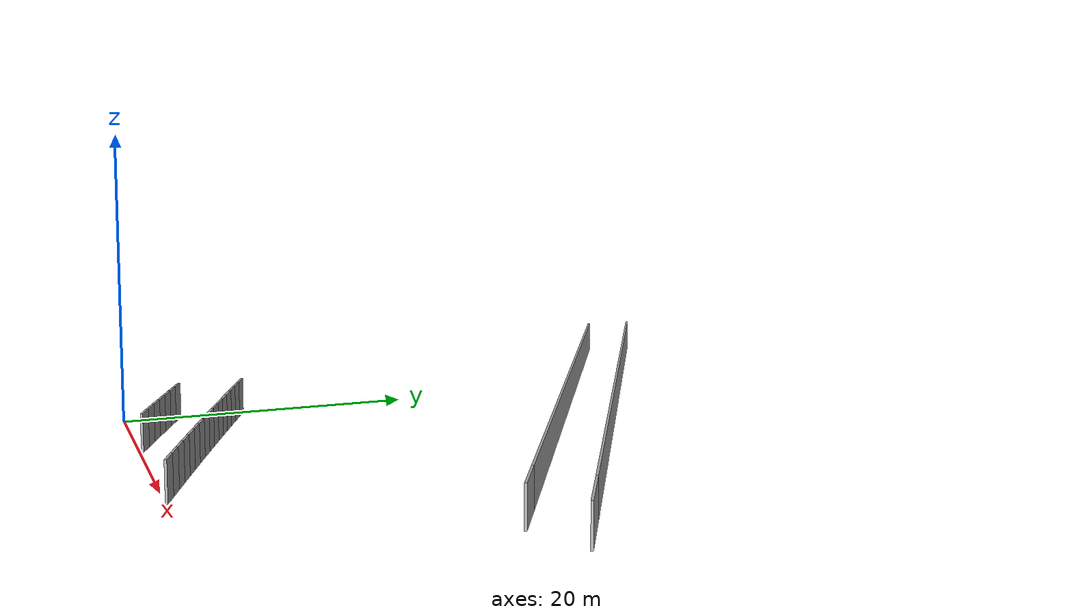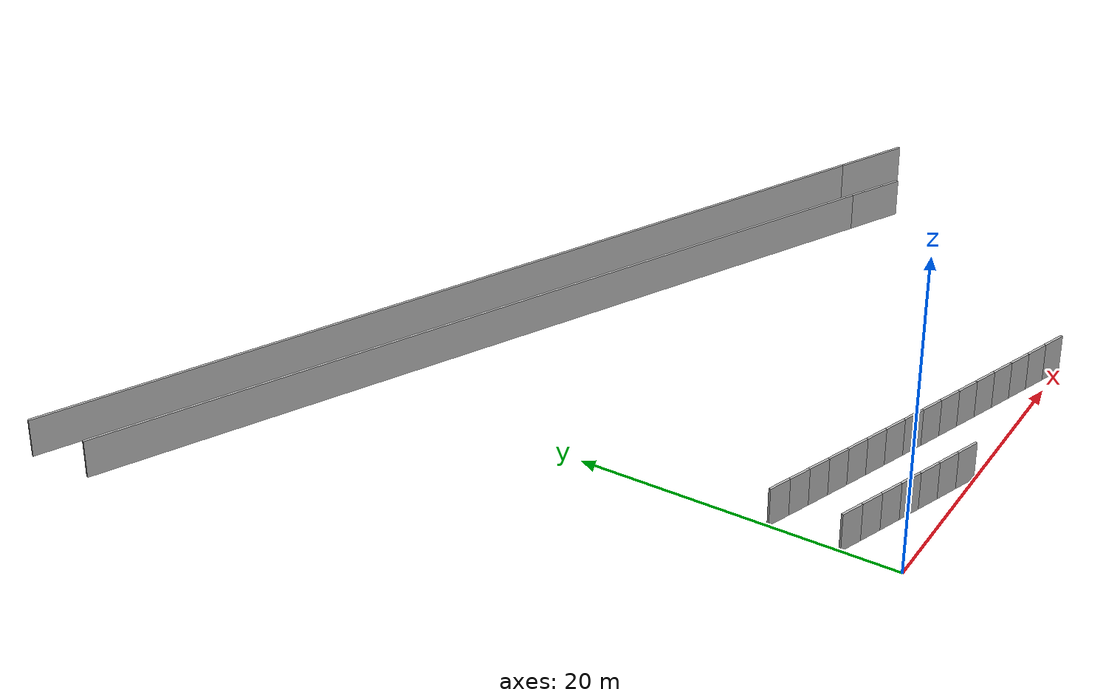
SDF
<?xml version="1.0" ?>
<sdf version="1.6">
  <model name="sps_1605">
    <pose frame="">0 0 0 0 -0 0</pose>
    <static>1</static>
    <self_collide>0</self_collide>
    <allow_auto_disable>0</allow_auto_disable>
    <link name="Wall190">
      <kinematic>0</kinematic>
      <gravity>1</gravity>
      <self_collide>0</self_collide>
      <collision name="collision">
        <geometry>
          <box>
            <size>3.63576 0.15 2.5</size>
          </box>
        </geometry>
        <pose frame="">0 0 0 0 -0 0</pose>
      </collision>
      <visual name="visual">
        <geometry>
          <box>
            <size>3.63576 0.15 2.5</size>
          </box>
        </geometry>
        <pose frame="">0 0 0 0 -0 0</pose>
        <cast_shadows>1</cast_shadows>
        <transparency>0.0</transparency>
      </visual>
      <pose frame="">32.8732 17.0233 1.25 0 -0 2.64268</pose>
    </link>
    <link name="Wall191">
      <kinematic>0</kinematic>
      <gravity>1</gravity>
      <self_collide>0</self_collide>
      <collision name="collision">
        <geometry>
          <box>
            <size>53.3052 0.15 2.5</size>
          </box>
        </geometry>
        <pose frame="">0 0 0 0 -0 0</pose>
      </collision>
      <visual name="visual">
        <geometry>
          <box>
            <size>53.3052 0.15 2.5</size>
          </box>
        </geometry>
        <pose frame="">0 0 0 0 -0 0</pose>
        <cast_shadows>1</cast_shadows>
        <transparency>0.0</transparency>
      </visual>
      <pose frame="">7.87316 30.6456 1.25 0 -0 2.64268</pose>
    </link>
    <link name="Wall529">
      <kinematic>0</kinematic>
      <gravity>1</gravity>
      <self_collide>0</self_collide>
      <collision name="collision">
        <geometry>
          <box>
            <size>56.9411 0.15 2.5</size>
          </box>
        </geometry>
        <pose frame="">0 0 0 0 -0 0</pose>
      </collision>
      <visual name="visual">
        <geometry>
          <box>
            <size>56.9411 0.15 2.5</size>
          </box>
        </geometry>
        <pose frame="">0 0 0 0 -0 0</pose>
        <cast_shadows>1</cast_shadows>
        <transparency>0.0</transparency>
      </visual>
      <pose frame="">9.46944 33.7614 1.25 0 0 -0.498918</pose>
    </link>
    <link name="Wall530">
      <kinematic>0</kinematic>
      <gravity>1</gravity>
      <self_collide>0</self_collide>
      <collision name="collision">
        <geometry>
          <box>
            <size>4.69376 0.15 2.5</size>
          </box>
        </geometry>
        <pose frame="">0 0 0 0 -0 0</pose>
      </collision>
      <visual name="visual">
        <geometry>
          <box>
            <size>4.69376 0.15 2.5</size>
          </box>
        </geometry>
        <pose frame="">0 0 0 0 -0 0</pose>
        <cast_shadows>1</cast_shadows>
        <transparency>0.0</transparency>
      </visual>
      <pose frame="">36.5302 19.016 1.25 0 0 -0.498918</pose>
    </link>
    <link name="Wall8783">
      <kinematic>0</kinematic>
      <gravity>1</gravity>
      <self_collide>0</self_collide>
      <collision name="collision">
        <geometry>
          <box>
            <size>1.49888 0.15 2.5</size>
          </box>
        </geometry>
        <pose frame="">0 0 0 0 -0 0</pose>
      </collision>
      <visual name="visual">
        <geometry>
          <box>
            <size>1.49888 0.15 2.5</size>
          </box>
        </geometry>
        <pose frame="">0 0 0 0 -0 0</pose>
        <cast_shadows>1</cast_shadows>
        <transparency>0.0</transparency>
      </visual>
      <pose frame="">0.735038 3.5175 1.25 0 0 -0.357736</pose>
    </link>
    <link name="Wall8784">
      <kinematic>0</kinematic>
      <gravity>1</gravity>
      <self_collide>0</self_collide>
      <collision name="collision">
        <geometry>
          <box>
            <size>1.49896 0.15 2.5</size>
          </box>
        </geometry>
        <pose frame="">0 0 0 0 -0 0</pose>
      </collision>
      <visual name="visual">
        <geometry>
          <box>
            <size>1.49896 0.15 2.5</size>
          </box>
        </geometry>
        <pose frame="">0 0 0 0 -0 0</pose>
        <cast_shadows>1</cast_shadows>
        <transparency>0.0</transparency>
      </visual>
      <pose frame="">2.13946 2.9937 1.25 0 0 -0.35624</pose>
    </link>
    <link name="Wall8785">
      <kinematic>0</kinematic>
      <gravity>1</gravity>
      <self_collide>0</self_collide>
      <collision name="collision">
        <geometry>
          <box>
            <size>1.49893 0.15 2.5</size>
          </box>
        </geometry>
        <pose frame="">0 0 0 0 -0 0</pose>
      </collision>
      <visual name="visual">
        <geometry>
          <box>
            <size>1.49893 0.15 2.5</size>
          </box>
        </geometry>
        <pose frame="">0 0 0 0 -0 0</pose>
        <cast_shadows>1</cast_shadows>
        <transparency>0.0</transparency>
      </visual>
      <pose frame="">3.54476 2.47221 1.25 0 0 -0.354424</pose>
    </link>
    <link name="Wall8786">
      <kinematic>0</kinematic>
      <gravity>1</gravity>
      <self_collide>0</self_collide>
      <collision name="collision">
        <geometry>
          <box>
            <size>1.49911 0.15 2.5</size>
          </box>
        </geometry>
        <pose frame="">0 0 0 0 -0 0</pose>
      </collision>
      <visual name="visual">
        <geometry>
          <box>
            <size>1.49911 0.15 2.5</size>
          </box>
        </geometry>
        <pose frame="">0 0 0 0 -0 0</pose>
        <cast_shadows>1</cast_shadows>
        <transparency>0.0</transparency>
      </visual>
      <pose frame="">4.95095 1.9529 1.25 0 0 -0.353119</pose>
    </link>
    <link name="Wall8787">
      <kinematic>0</kinematic>
      <gravity>1</gravity>
      <self_collide>0</self_collide>
      <collision name="collision">
        <geometry>
          <box>
            <size>1.49878 0.15 2.5</size>
          </box>
        </geometry>
        <pose frame="">0 0 0 0 -0 0</pose>
      </collision>
      <visual name="visual">
        <geometry>
          <box>
            <size>1.49878 0.15 2.5</size>
          </box>
        </geometry>
        <pose frame="">0 0 0 0 -0 0</pose>
        <cast_shadows>1</cast_shadows>
        <transparency>0.0</transparency>
      </visual>
      <pose frame="">6.35787 1.43577 1.25 0 0 -0.351335</pose>
    </link>
    <link name="Wall8788">
      <kinematic>0</kinematic>
      <gravity>1</gravity>
      <self_collide>0</self_collide>
      <collision name="collision">
        <geometry>
          <box>
            <size>1.49895 0.15 2.5</size>
          </box>
        </geometry>
        <pose frame="">0 0 0 0 -0 0</pose>
      </collision>
      <visual name="visual">
        <geometry>
          <box>
            <size>1.49895 0.15 2.5</size>
          </box>
        </geometry>
        <pose frame="">0 0 0 0 -0 0</pose>
        <cast_shadows>1</cast_shadows>
        <transparency>0.0</transparency>
      </visual>
      <pose frame="">7.76556 0.920974 1.25 0 0 -0.349863</pose>
    </link>
    <link name="Wall8789">
      <kinematic>0</kinematic>
      <gravity>1</gravity>
      <self_collide>0</self_collide>
      <collision name="collision">
        <geometry>
          <box>
            <size>1.49883 0.15 2.5</size>
          </box>
        </geometry>
        <pose frame="">0 0 0 0 -0 0</pose>
      </collision>
      <visual name="visual">
        <geometry>
          <box>
            <size>1.49883 0.15 2.5</size>
          </box>
        </geometry>
        <pose frame="">0 0 0 0 -0 0</pose>
        <cast_shadows>1</cast_shadows>
        <transparency>0.0</transparency>
      </visual>
      <pose frame="">9.17403 0.408278 1.25 0 0 -0.348333</pose>
    </link>
    <link name="Wall9863">
      <kinematic>0</kinematic>
      <gravity>1</gravity>
      <self_collide>0</self_collide>
      <collision name="collision">
        <geometry>
          <box>
            <size>1.49237 0.15 2.5</size>
          </box>
        </geometry>
        <pose frame="">0 0 0 0 -0 0</pose>
      </collision>
      <visual name="visual">
        <geometry>
          <box>
            <size>1.49237 0.15 2.5</size>
          </box>
        </geometry>
        <pose frame="">0 0 0 0 -0 0</pose>
        <cast_shadows>1</cast_shadows>
        <transparency>0.0</transparency>
      </visual>
      <pose frame="">0.787345 7.9193 1.25 0 0 -0.359369</pose>
    </link>
    <link name="Wall9864">
      <kinematic>0</kinematic>
      <gravity>1</gravity>
      <self_collide>0</self_collide>
      <collision name="collision">
        <geometry>
          <box>
            <size>1.49249 0.15 2.5</size>
          </box>
        </geometry>
        <pose frame="">0 0 0 0 -0 0</pose>
      </collision>
      <visual name="visual">
        <geometry>
          <box>
            <size>1.49249 0.15 2.5</size>
          </box>
        </geometry>
        <pose frame="">0 0 0 0 -0 0</pose>
        <cast_shadows>1</cast_shadows>
        <transparency>0.0</transparency>
      </visual>
      <pose frame="">2.18487 7.39558 1.25 0 0 -0.357722</pose>
    </link>
    <link name="Wall9865">
      <kinematic>0</kinematic>
      <gravity>1</gravity>
      <self_collide>0</self_collide>
      <collision name="collision">
        <geometry>
          <box>
            <size>1.49224 0.15 2.5</size>
          </box>
        </geometry>
        <pose frame="">0 0 0 0 -0 0</pose>
      </collision>
      <visual name="visual">
        <geometry>
          <box>
            <size>1.49224 0.15 2.5</size>
          </box>
        </geometry>
        <pose frame="">0 0 0 0 -0 0</pose>
        <cast_shadows>1</cast_shadows>
        <transparency>0.0</transparency>
      </visual>
      <pose frame="">3.58315 6.8741 1.25 0 0 -0.356214</pose>
    </link>
    <link name="Wall9866">
      <kinematic>0</kinematic>
      <gravity>1</gravity>
      <self_collide>0</self_collide>
      <collision name="collision">
        <geometry>
          <box>
            <size>1.49244 0.15 2.5</size>
          </box>
        </geometry>
        <pose frame="">0 0 0 0 -0 0</pose>
      </collision>
      <visual name="visual">
        <geometry>
          <box>
            <size>1.49244 0.15 2.5</size>
          </box>
        </geometry>
        <pose frame="">0 0 0 0 -0 0</pose>
        <cast_shadows>1</cast_shadows>
        <transparency>0.0</transparency>
      </visual>
      <pose frame="">4.98223 6.35481 1.25 0 0 -0.354592</pose>
    </link>
    <link name="Wall9867">
      <kinematic>0</kinematic>
      <gravity>1</gravity>
      <self_collide>0</self_collide>
      <collision name="collision">
        <geometry>
          <box>
            <size>1.49251 0.15 2.5</size>
          </box>
        </geometry>
        <pose frame="">0 0 0 0 -0 0</pose>
      </collision>
      <visual name="visual">
        <geometry>
          <box>
            <size>1.49251 0.15 2.5</size>
          </box>
        </geometry>
        <pose frame="">0 0 0 0 -0 0</pose>
        <cast_shadows>1</cast_shadows>
        <transparency>0.0</transparency>
      </visual>
      <pose frame="">6.38225 5.83769 1.25 0 0 -0.353051</pose>
    </link>
    <link name="Wall9868">
      <kinematic>0</kinematic>
      <gravity>1</gravity>
      <self_collide>0</self_collide>
      <collision name="collision">
        <geometry>
          <box>
            <size>1.49241 0.15 2.5</size>
          </box>
        </geometry>
        <pose frame="">0 0 0 0 -0 0</pose>
      </collision>
      <visual name="visual">
        <geometry>
          <box>
            <size>1.49241 0.15 2.5</size>
          </box>
        </geometry>
        <pose frame="">0 0 0 0 -0 0</pose>
        <cast_shadows>1</cast_shadows>
        <transparency>0.0</transparency>
      </visual>
      <pose frame="">7.78307 5.32277 1.25 0 0 -0.351461</pose>
    </link>
    <link name="Wall9869">
      <kinematic>0</kinematic>
      <gravity>1</gravity>
      <self_collide>0</self_collide>
      <collision name="collision">
        <geometry>
          <box>
            <size>1.49232 0.15 2.5</size>
          </box>
        </geometry>
        <pose frame="">0 0 0 0 -0 0</pose>
      </collision>
      <visual name="visual">
        <geometry>
          <box>
            <size>1.49232 0.15 2.5</size>
          </box>
        </geometry>
        <pose frame="">0 0 0 0 -0 0</pose>
        <cast_shadows>1</cast_shadows>
        <transparency>0.0</transparency>
      </visual>
      <pose frame="">9.18465 4.81019 1.25 0 0 -0.349742</pose>
    </link>
    <link name="Wall9870">
      <kinematic>0</kinematic>
      <gravity>1</gravity>
      <self_collide>0</self_collide>
      <collision name="collision">
        <geometry>
          <box>
            <size>1.49246 0.15 2.5</size>
          </box>
        </geometry>
        <pose frame="">0 0 0 0 -0 0</pose>
      </collision>
      <visual name="visual">
        <geometry>
          <box>
            <size>1.49246 0.15 2.5</size>
          </box>
        </geometry>
        <pose frame="">0 0 0 0 -0 0</pose>
        <cast_shadows>1</cast_shadows>
        <transparency>0.0</transparency>
      </visual>
      <pose frame="">10.5871 4.29982 1.25 0 0 -0.348317</pose>
    </link>
    <link name="Wall9871">
      <kinematic>0</kinematic>
      <gravity>1</gravity>
      <self_collide>0</self_collide>
      <collision name="collision">
        <geometry>
          <box>
            <size>1.4924 0.15 2.5</size>
          </box>
        </geometry>
        <pose frame="">0 0 0 0 -0 0</pose>
      </collision>
      <visual name="visual">
        <geometry>
          <box>
            <size>1.4924 0.15 2.5</size>
          </box>
        </geometry>
        <pose frame="">0 0 0 0 -0 0</pose>
        <cast_shadows>1</cast_shadows>
        <transparency>0.0</transparency>
      </visual>
      <pose frame="">11.9903 3.79152 1.25 0 0 -0.346765</pose>
    </link>
    <link name="Wall9872">
      <kinematic>0</kinematic>
      <gravity>1</gravity>
      <self_collide>0</self_collide>
      <collision name="collision">
        <geometry>
          <box>
            <size>1.49239 0.15 2.5</size>
          </box>
        </geometry>
        <pose frame="">0 0 0 0 -0 0</pose>
      </collision>
      <visual name="visual">
        <geometry>
          <box>
            <size>1.49239 0.15 2.5</size>
          </box>
        </geometry>
        <pose frame="">0 0 0 0 -0 0</pose>
        <cast_shadows>1</cast_shadows>
        <transparency>0.0</transparency>
      </visual>
      <pose frame="">13.3942 3.28551 1.25 0 0 -0.345071</pose>
    </link>
    <link name="Wall9873">
      <kinematic>0</kinematic>
      <gravity>1</gravity>
      <self_collide>0</self_collide>
      <collision name="collision">
        <geometry>
          <box>
            <size>1.49246 0.15 2.5</size>
          </box>
        </geometry>
        <pose frame="">0 0 0 0 -0 0</pose>
      </collision>
      <visual name="visual">
        <geometry>
          <box>
            <size>1.49246 0.15 2.5</size>
          </box>
        </geometry>
        <pose frame="">0 0 0 0 -0 0</pose>
        <cast_shadows>1</cast_shadows>
        <transparency>0.0</transparency>
      </visual>
      <pose frame="">14.7991 2.78169 1.25 0 0 -0.343621</pose>
    </link>
    <link name="Wall9874">
      <kinematic>0</kinematic>
      <gravity>1</gravity>
      <self_collide>0</self_collide>
      <collision name="collision">
        <geometry>
          <box>
            <size>1.49239 0.15 2.5</size>
          </box>
        </geometry>
        <pose frame="">0 0 0 0 -0 0</pose>
      </collision>
      <visual name="visual">
        <geometry>
          <box>
            <size>1.49239 0.15 2.5</size>
          </box>
        </geometry>
        <pose frame="">0 0 0 0 -0 0</pose>
        <cast_shadows>1</cast_shadows>
        <transparency>0.0</transparency>
      </visual>
      <pose frame="">16.2047 2.2801 1.25 0 0 -0.341902</pose>
    </link>
    <link name="Wall9875">
      <kinematic>0</kinematic>
      <gravity>1</gravity>
      <self_collide>0</self_collide>
      <collision name="collision">
        <geometry>
          <box>
            <size>1.49242 0.15 2.5</size>
          </box>
        </geometry>
        <pose frame="">0 0 0 0 -0 0</pose>
      </collision>
      <visual name="visual">
        <geometry>
          <box>
            <size>1.49242 0.15 2.5</size>
          </box>
        </geometry>
        <pose frame="">0 0 0 0 -0 0</pose>
        <cast_shadows>1</cast_shadows>
        <transparency>0.0</transparency>
      </visual>
      <pose frame="">17.6111 1.78081 1.25 0 0 -0.340375</pose>
    </link>
    <link name="Wall9876">
      <kinematic>0</kinematic>
      <gravity>1</gravity>
      <self_collide>0</self_collide>
      <collision name="collision">
        <geometry>
          <box>
            <size>1.49224 0.15 2.5</size>
          </box>
        </geometry>
        <pose frame="">0 0 0 0 -0 0</pose>
      </collision>
      <visual name="visual">
        <geometry>
          <box>
            <size>1.49224 0.15 2.5</size>
          </box>
        </geometry>
        <pose frame="">0 0 0 0 -0 0</pose>
        <cast_shadows>1</cast_shadows>
        <transparency>0.0</transparency>
      </visual>
      <pose frame="">19.0182 1.28371 1.25 0 0 -0.338812</pose>
    </link>
    <link name="Wall9877">
      <kinematic>0</kinematic>
      <gravity>1</gravity>
      <self_collide>0</self_collide>
      <collision name="collision">
        <geometry>
          <box>
            <size>1.49246 0.15 2.5</size>
          </box>
        </geometry>
        <pose frame="">0 0 0 0 -0 0</pose>
      </collision>
      <visual name="visual">
        <geometry>
          <box>
            <size>1.49246 0.15 2.5</size>
          </box>
        </geometry>
        <pose frame="">0 0 0 0 -0 0</pose>
        <cast_shadows>1</cast_shadows>
        <transparency>0.0</transparency>
      </visual>
      <pose frame="">20.4261 0.788802 1.25 0 0 -0.337244</pose>
    </link>
    <link name="Wall9878">
      <kinematic>0</kinematic>
      <gravity>1</gravity>
      <self_collide>0</self_collide>
      <collision name="collision">
        <geometry>
          <box>
            <size>1.4924 0.15 2.5</size>
          </box>
        </geometry>
        <pose frame="">0 0 0 0 -0 0</pose>
      </collision>
      <visual name="visual">
        <geometry>
          <box>
            <size>1.4924 0.15 2.5</size>
          </box>
        </geometry>
        <pose frame="">0 0 0 0 -0 0</pose>
        <cast_shadows>1</cast_shadows>
        <transparency>0.0</transparency>
      </visual>
      <pose frame="">21.8349 0.296187 1.25 0 0 -0.335525</pose>
    </link>
  </model>
</sdf>
